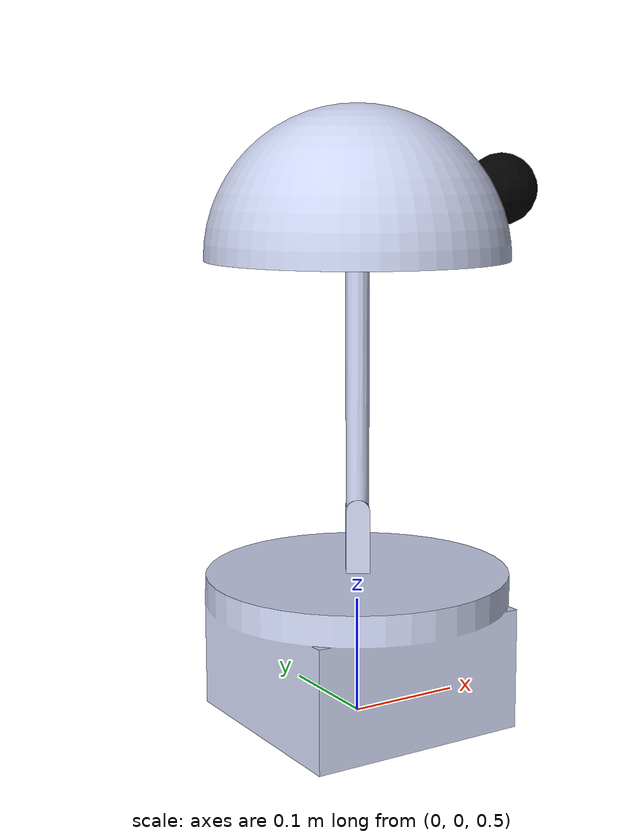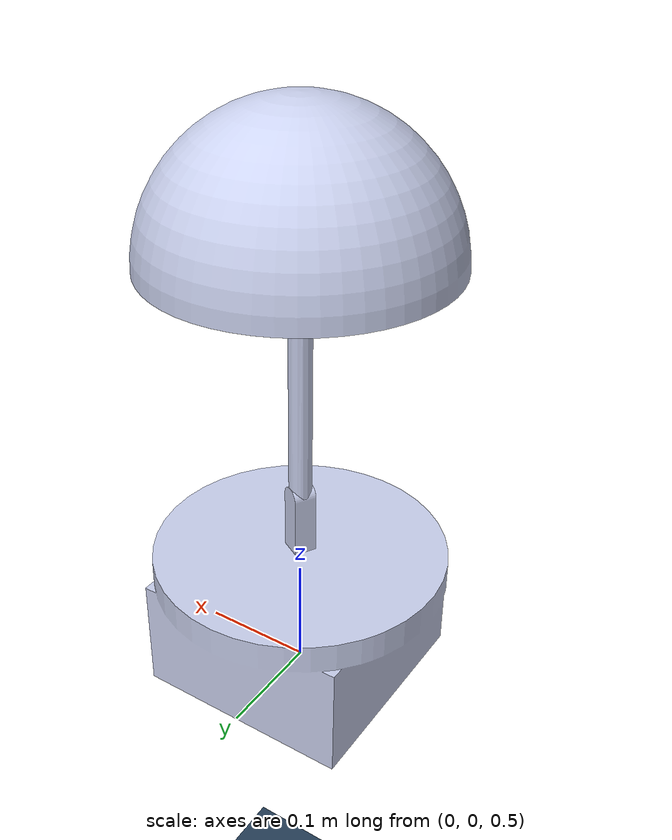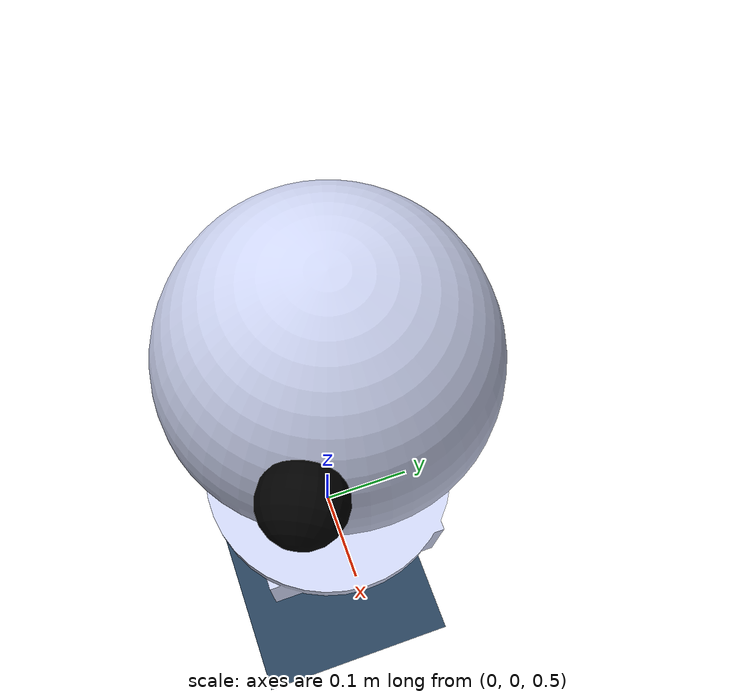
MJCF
<mujoco model="bb8_car">
  <!-- Set angles to radians for all joints and actuators -->
  <compiler angle="radian" />
  <!-- Simulation options: timestep and integrator type -->
  <option timestep="0.001" integrator="implicit" gravity="0 0 -9.81">
    <flag warmstart="enable" />
  </option>

  <asset>
    <mesh name="base_link" content_type="model/stl" file="base_link.STL" scale="1.3 1.3 1.3"/>
    <mesh name="a1" content_type="model/stl" file="a1.STL" />
    <mesh name="a2" content_type="model/stl" file="a2.STL" />
    <mesh name="h" content_type="model/stl" file="h.STL" scale="1.275 1.275 1.275"/>
    <mesh name="w1" content_type="model/stl" file="w1.STL" scale="1.125 1.125 1.125"/>
    <mesh name="w2" content_type="model/stl" file="w2.STL" scale="1.125 1.125 1.125"/>
    <mesh name="w3" content_type="model/stl" file="w3.STL" scale="1.125 1.125 1.125"/>
    <mesh name="w4" content_type="model/stl" file="w4.STL" scale="1.125 1.125 1.125"/>
    <texture name="grid" type="2d" builtin="checker" rgb1=".1 .2 .3" rgb2=".2 .3 .4" width="300" height="300" />
    <material name="grid" texture="grid" texrepeat="8 8" reflectance=".2" />
  </asset>

  <worldbody>
    <light name="top" pos="0 0 20" />
    <geom name="floor" type="plane" pos="0 0 0" size="10 10 0.1" material="grid" friction="1.0 0.005 0.0001" contype="1" conaffinity="1"/>
    <body name="base_link" pos="0 0 0.6" quat="-0.707107 0.707107 0 0">
      <!-- The main body of the robot, with a freejoint for 6-DOF movement -->
      <freejoint name="base_link_freejoint" />
      <!-- Camera removed from base_link; will be attached to head -->
      <inertial pos="-4.4409E-16 0.027063 -3.3307E-16" quat="0 0 0 1" mass="20" diaginertia="0.0059267 0.0098916 0.0059267" />
      <geom type="mesh" rgba="0.79216 0.81961 0.93333 1" mesh="base_link" />
      <!-- Arm segment a1 -->
      <body name="a1" pos="0 -0.02 0" quat="0.356335 0.356338 0.610757 -0.610757">
        <inertial pos="0 0 0.033964" quat="0.707107 0 0 0.707107" mass="0.027142" diaginertia="5.8419e-06 5.8158e-06 1.7833e-06" />
        <joint name="a1" pos="0 0 0" axis="0 0 -1" ref="0.4363" />
        <geom type="mesh" rgba="0.79216 0.81961 0.93333 1" mesh="a1" />
        <!-- Arm segment a2 -->
        <body name="a2" pos="0 0 0.06" quat="1 0 0 0">
          <inertial pos="4.0307e-08 1.6883e-08 0.12424" quat="0.999977 0 0 0.0067613" mass="0.072732" diaginertia="0.00032679 0.00032678 3.6454e-06" />
          <joint name="a2" pos="0 0 0" axis="1 0 0" ref="0"/>
          <geom type="mesh" rgba="0.79216 0.81961 0.93333 1" mesh="a2" friction = "1 1 1" condim = "6"/>
          <!-- Head -->
          <body name="h" pos="0 0 0.34" quat="0.51312 0.486525 0.513122 -0.486527">
            <inertial pos="0.0625 0 0" mass="0.5" diaginertia="0.0083776 0.0054323 0.0054323" />
            <joint name="h" pos="0 0 0" axis="-1 0 0" ref="0.0"/>
            <geom type="mesh" rgba="0.79216 0.81961 0.93333 1" mesh="h"/>
            <!-- Camera attached to the head so it rotates with the head -->
            <camera name="head_cam" pos="0 0 5" xyaxes="0 1 0 -1 0 0" />
            <!-- black sphere on the front of the head (visual only, no collision) -->
            <geom type="sphere" pos="0.07 0.0 -0.12" size="0.03" rgba="0 0 0 1" contype="0" conaffinity="0" />
          </body>
        </body>
      </body>

    </body>
  </worldbody>

  <actuator>
    <position name="a1_motor" joint="a1" kp="5" kv="1" ctrlrange="-3.14159 3.14159" />
    <position name="a2_motor" joint="a2" kp="10" kv="5" ctrlrange="-0.5236 0.5236"/>
    <position name="h_motor" joint="h" kp="5" kv="1" ctrlrange="-3.14159 3.14159" />

    <!-- b motors removed as requested -->
  </actuator>
</mujoco>
